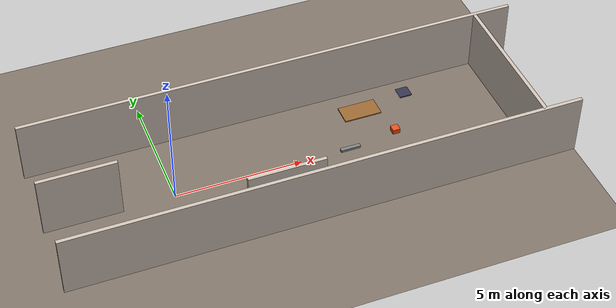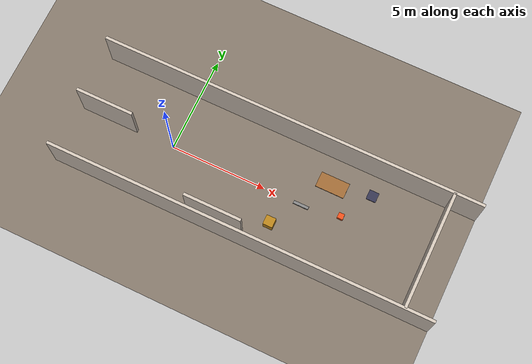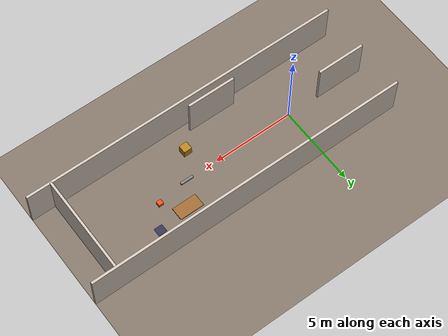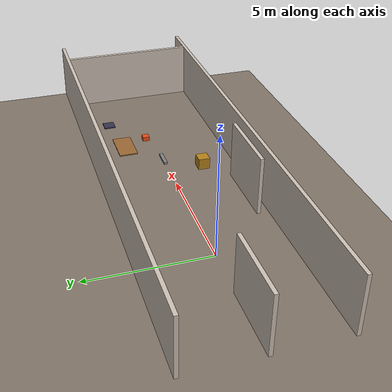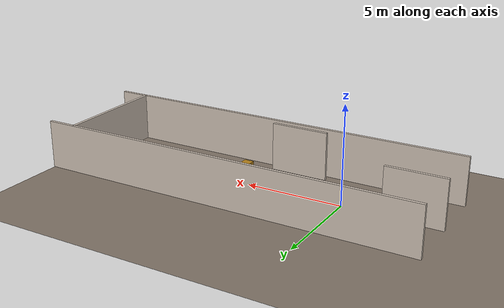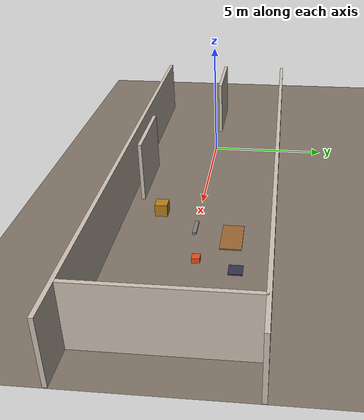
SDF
<?xml version="1.0"?>
<sdf version="1.6">
  <world name="ranger_lab_corridor">
    <scene>
      <ambient>0.4 0.4 0.4 1.0</ambient>
      <background>0.7 0.8 0.9 1.0</background>
      <shadows>true</shadows>
    </scene>

    <!-- Sun light -->
    <include>
      <uri>model://sun</uri>
    </include>

    <!-- Ground plane -->
    <include>
      <uri>model://ground_plane</uri>
    </include>

    <model name="lab_floor">
      <static>true</static>
      <pose>0 0 -0.005 0 0 0</pose>
      <link name="floor_link">
        <visual name="floor_visual">
          <geometry><plane><normal>0 0 1</normal><size>30 30</size></plane></geometry>
          <material>
            <ambient>0.5 0.45 0.4 1.0</ambient>
            <diffuse>0.5 0.45 0.4 1.0</diffuse>
          </material>
        </visual>
      </link>
    </model>

    <!-- ========== Corridor Walls ========== -->
    <!-- North wall -->
    <model name="wall_north">
      <static>true</static>
      <pose>5 3 1.25 0 0 0</pose>
      <link name="wall_link">
        <visual name="visual">
          <geometry><box><size>20 0.15 2.5</size></box></geometry>
          <material>
            <ambient>0.8 0.75 0.7 1.0</ambient>
            <diffuse>0.8 0.75 0.7 1.0</diffuse>
          </material>
        </visual>
        <collision name="collision">
          <geometry><box><size>20 0.15 2.5</size></box></geometry>
        </collision>
      </link>
    </model>

    <!-- South wall -->
    <model name="wall_south">
      <static>true</static>
      <pose>5 -3 1.25 0 0 0</pose>
      <link name="wall_link">
        <visual name="visual">
          <geometry><box><size>20 0.15 2.5</size></box></geometry>
          <material>
            <ambient>0.8 0.75 0.7 1.0</ambient>
            <diffuse>0.8 0.75 0.7 1.0</diffuse>
          </material>
        </visual>
        <collision name="collision">
          <geometry><box><size>20 0.15 2.5</size></box></geometry>
        </collision>
      </link>
    </model>

    <!-- West wall (with doorway) — two segments -->
    <model name="wall_west_top">
      <static>true</static>
      <pose>-3.5 0 1.25 0 0 0</pose>
      <link name="wall_link">
        <visual name="visual">
          <geometry><box><size>3 0.15 2.5</size></box></geometry>
          <material>
            <ambient>0.8 0.75 0.7 1.0</ambient>
            <diffuse>0.8 0.75 0.7 1.0</diffuse>
          </material>
        </visual>
        <collision name="collision">
          <geometry><box><size>3 0.15 2.5</size></box></geometry>
        </collision>
      </link>
    </model>

    <model name="wall_west_bottom">
      <static>true</static>
      <pose>3.5 -2.5 1.25 0 0 0</pose>
      <link name="wall_link">
        <visual name="visual">
          <geometry><box><size>3 0.15 2.5</size></box></geometry>
          <material>
            <ambient>0.8 0.75 0.7 1.0</ambient>
            <diffuse>0.8 0.75 0.7 1.0</diffuse>
          </material>
        </visual>
        <collision name="collision">
          <geometry><box><size>3 0.15 2.5</size></box></geometry>
        </collision>
      </link>
    </model>

    <!-- East wall (end of corridor) -->
    <model name="wall_east">
      <static>true</static>
      <pose>13.5 0 1.25 0 0 0</pose>
      <link name="wall_link">
        <visual name="visual">
          <geometry><box><size>0.15 6 2.5</size></box></geometry>
          <material>
            <ambient>0.8 0.75 0.7 1.0</ambient>
            <diffuse>0.8 0.75 0.7 1.0</diffuse>
          </material>
        </visual>
        <collision name="collision">
          <geometry><box><size>0.15 6 2.5</size></box></geometry>
        </collision>
      </link>
    </model>

    <!-- ========== Static Obstacles ========== -->
    <!-- Table -->
    <model name="table_1">
      <static>true</static>
      <pose>8 1.5 0.375 0 0 0</pose>
      <link name="table_link">
        <visual name="visual">
          <geometry><box><size>1.5 0.8 0.05</size></box></geometry>
          <material><ambient>0.6 0.4 0.2 1.0</ambient></material>
        </visual>
        <collision name="collision">
          <geometry><box><size>1.5 0.8 0.05</size></box></geometry>
        </collision>
      </link>
    </model>

    <!-- Table legs -->
    <model name="table_1_legs">
      <static>true</static>
      <pose>8 1.5 0 0 0 0</pose>
      <link name="legs_link">
        <visual name="visual">
          <geometry><box><size>0.05 0.05 0.75</size></box></geometry>
          <material><ambient>0.4 0.3 0.2 1.0</ambient></material>
        </visual>
        <collision name="collision">
          <geometry><box><size>1.4 0.7 0.75</size></box></geometry>
        </collision>
      </link>
    </model>

    <!-- Box/crate -->
    <model name="crate_1">
      <static>true</static>
      <pose>6 -1.5 0.25 0 0 0</pose>
      <link name="crate_link">
        <visual name="visual">
          <geometry><box><size>0.5 0.5 0.5</size></box></geometry>
          <material><ambient>0.7 0.5 0.1 1.0</ambient></material>
        </visual>
        <collision name="collision">
          <geometry><box><size>0.5 0.5 0.5</size></box></geometry>
        </collision>
      </link>
    </model>

    <!-- Chair -->
    <model name="chair_1">
      <static>true</static>
      <pose>10 1.8 0.45 0 0 0</pose>
      <link name="chair_link">
        <visual name="visual">
          <geometry><box><size>0.5 0.5 0.05</size></box></geometry>
          <material><ambient>0.2 0.2 0.3 1.0</ambient></material>
        </visual>
        <collision name="collision">
          <geometry><box><size>0.5 0.5 0.9</size></box></geometry>
        </collision>
      </link>
    </model>

    <!-- ========== Low Obstacles (for D435i blind-zone test) ========== -->
    <model name="low_box_1">
      <static>true</static>
      <pose>9 0.3 0.1 0 0 0</pose>
      <link name="low_box_link">
        <visual name="visual">
          <geometry><box><size>0.3 0.3 0.2</size></box></geometry>
          <material><ambient>0.9 0.3 0.1 1.0</ambient></material>
        </visual>
        <collision name="collision">
          <geometry><box><size>0.3 0.3 0.2</size></box></geometry>
        </collision>
      </link>
    </model>

    <!-- Curb edge -->
    <model name="curb_edge_1">
      <static>true</static>
      <pose>7 0 0.05 0 0 0</pose>
      <link name="curb_link">
        <visual name="visual">
          <geometry><box><size>0.8 0.15 0.1</size></box></geometry>
          <material><ambient>0.5 0.5 0.5 1.0</ambient></material>
        </visual>
        <collision name="collision">
          <geometry><box><size>0.8 0.15 0.1</size></box></geometry>
        </collision>
      </link>
    </model>

    <gravity>0 0 -9.8</gravity>
    <magnetic_field>6e-06 2.3e-05 -4.2e-05</magnetic_field>
    <atmosphere type="adiabatic"/>
    <physics name="default_physics" type="ode">
      <max_step_size>0.001</max_step_size>
      <real_time_factor>1.0</real_time_factor>
      <real_time_update_rate>1000.0</real_time_update_rate>
    </physics>
  </world>
</sdf>
